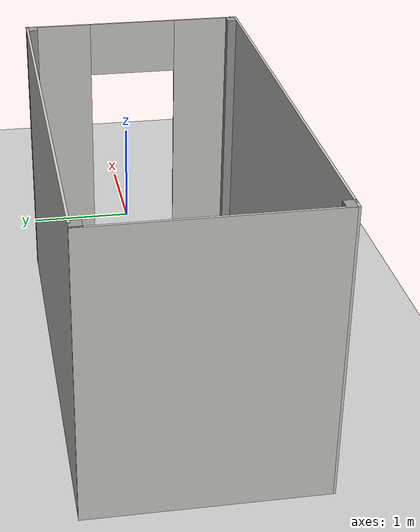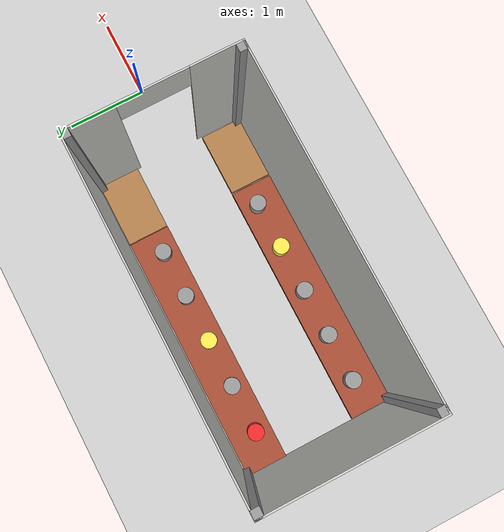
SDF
<sdf version="1.7">
 <world name="default">
  <light name="sun" type="directional">
   <pose>0 0 10 0 -0 0</pose>
   <diffuse>0.8 0.8 0.8 1</diffuse>
   <specular>0.2 0.2 0.2 1</specular>
   <attenuation>
    <range>1000</range>
    <constant>0.9</constant>
    <linear>0.01</linear>
    <quadratic>0.001</quadratic>
   </attenuation>
   <direction>-0.5 0.1 -0.9</direction>
   <spot><inner_angle>0</inner_angle><outer_angle>0</outer_angle><falloff>0</falloff></spot>
  </light>
  <model name="ground_plane">
   <static>1</static>
   <link name="link">
    <collision name="collision">
     <geometry><plane><normal>0 0 1</normal><size>100 100</size></plane></geometry>
     <surface><friction><ode><mu>100</mu><mu2>50</mu2></ode></friction></surface>
    </collision>
    <visual name="visual">
     <cast_shadows>0</cast_shadows>
     <geometry><plane><normal>0 0 1</normal><size>100 100</size></plane></geometry>
     <material>
      <script><uri>file://media/materials/scripts/gazebo.material</uri><name>Gazebo/Grey</name></script>
     </material>
    </visual>
   </link>
  </model>
  <gravity>0 0 -9.8</gravity>
  <magnetic_field>6e-06 2.3e-05 -4.2e-05</magnetic_field>
  <atmosphere type="adiabatic"/>
  <physics type="ode">
   <max_step_size>0.001</max_step_size>
   <real_time_factor>1</real_time_factor>
   <real_time_update_rate>1000</real_time_update_rate>
  </physics>
  <scene><ambient>0.4 0.4 0.4 1</ambient><background>0.7 0.7 0.7 1</background><shadows>1</shadows></scene>
  <spherical_coordinates>
   <surface_model>EARTH_WGS84</surface_model>
   <latitude_deg>0</latitude_deg>
   <longitude_deg>0</longitude_deg>
   <elevation>0</elevation>
   <heading_deg>0</heading_deg>
  </spherical_coordinates>
  <model name="Greenhouse">
   <link name="Wall_0">
    <pose>-0.048 -0.148439 0 0 -0 0</pose>
    <visual name="Wall_0_Visual">
     <pose>0 0 1.25 0 -0 0</pose>
     <geometry><box><size>4 0.02 2.5</size></box></geometry>
     <material>
      <script><uri>file://media/materials/scripts/gazebo.material</uri><name>Gazebo/CeilingTiled</name></script>
      <ambient>1 1 1 1</ambient>
      <shader type="pixel"/>
     </material>
     <meta><layer>0</layer></meta>
    </visual>
    <collision name="Wall_0_Collision">
     <pose>0 0 1.25 0 -0 0</pose>
     <geometry><box><size>4 0.02 2.5</size></box></geometry>
     <surface>
      <friction>
       <ode><mu>1</mu><mu2>1</mu2><fdir1>0 0 0</fdir1><slip1>0</slip1><slip2>0</slip2></ode>
       <torsional>
        <coefficient>1</coefficient>
        <patch_radius>0</patch_radius>
        <surface_radius>0</surface_radius>
        <use_patch_radius>1</use_patch_radius>
        <ode><slip>0</slip></ode>
       </torsional>
      </friction>
      <bounce><restitution_coefficient>0</restitution_coefficient><threshold>1e+06</threshold></bounce>
      <contact>
       <collide_without_contact>0</collide_without_contact>
       <collide_without_contact_bitmask>1</collide_without_contact_bitmask>
       <collide_bitmask>1</collide_bitmask>
       <ode>
        <soft_cfm>0</soft_cfm>
        <soft_erp>0.2</soft_erp>
        <kp>1e+13</kp>
        <kd>1</kd>
        <max_vel>0.01</max_vel>
        <min_depth>0</min_depth>
       </ode>
       <bullet>
        <split_impulse>1</split_impulse>
        <split_impulse_penetration_threshold>-0.01</split_impulse_penetration_threshold>
        <soft_cfm>0</soft_cfm>
        <soft_erp>0.2</soft_erp>
        <kp>1e+13</kp>
        <kd>1</kd>
       </bullet>
      </contact>
     </surface>
    </collision>
   </link>
   <link name="Wall_1">
    <pose>1.942 -1.13844 0 0 0 -1.5708</pose>
    <visual name="Wall_1_Visual_1">
     <pose>0.699876 0 1.25 0 -0 0</pose>
     <geometry><box><size>0.600248 0.02 2.5</size></box></geometry>
     <material>
      <script><uri>file://media/materials/scripts/gazebo.material</uri><name>Gazebo/CeilingTiled</name></script>
      <ambient>1 1 1 1</ambient>
      <shader type="pixel"/>
     </material>
     <meta><layer>0</layer></meta>
    </visual>
    <visual name="Wall_1_Visual_2">
     <pose>-0.000248 0 2.25 0 -0 0</pose>
     <geometry><box><size>0.8 0.02 0.5</size></box></geometry>
     <material>
      <script><uri>file://media/materials/scripts/gazebo.material</uri><name>Gazebo/CeilingTiled</name></script>
      <ambient>1 1 1 1</ambient>
      <shader type="pixel"/>
     </material>
     <meta><layer>0</layer></meta>
    </visual>
    <visual name="Wall_1_Visual_0">
     <pose>-0.700124 0 1.25 0 -0 0</pose>
     <geometry><box><size>0.599752 0.02 2.5</size></box></geometry>
     <material>
      <script><uri>file://media/materials/scripts/gazebo.material</uri><name>Gazebo/CeilingTiled</name></script>
      <ambient>1 1 1 1</ambient>
      <shader type="pixel"/>
     </material>
     <meta><layer>0</layer></meta>
    </visual>
    <collision name="Wall_1_Collision_0">
     <pose>-0.700124 0 1.25 0 -0 0</pose>
     <geometry><box><size>0.599752 0.02 2.5</size></box></geometry>
     <surface>
      <friction>
       <ode><mu>1</mu><mu2>1</mu2><fdir1>0 0 0</fdir1><slip1>0</slip1><slip2>0</slip2></ode>
       <torsional>
        <coefficient>1</coefficient>
        <patch_radius>0</patch_radius>
        <surface_radius>0</surface_radius>
        <use_patch_radius>1</use_patch_radius>
        <ode><slip>0</slip></ode>
       </torsional>
      </friction>
      <bounce><restitution_coefficient>0</restitution_coefficient><threshold>1e+06</threshold></bounce>
      <contact>
       <collide_without_contact>0</collide_without_contact>
       <collide_without_contact_bitmask>1</collide_without_contact_bitmask>
       <collide_bitmask>1</collide_bitmask>
       <ode>
        <soft_cfm>0</soft_cfm>
        <soft_erp>0.2</soft_erp>
        <kp>1e+13</kp>
        <kd>1</kd>
        <max_vel>0.01</max_vel>
        <min_depth>0</min_depth>
       </ode>
       <bullet>
        <split_impulse>1</split_impulse>
        <split_impulse_penetration_threshold>-0.01</split_impulse_penetration_threshold>
        <soft_cfm>0</soft_cfm>
        <soft_erp>0.2</soft_erp>
        <kp>1e+13</kp>
        <kd>1</kd>
       </bullet>
      </contact>
     </surface>
    </collision>
    <collision name="Wall_1_Collision_1">
     <pose>0.699876 0 1.25 0 -0 0</pose>
     <geometry><box><size>0.600248 0.02 2.5</size></box></geometry>
     <surface>
      <friction>
       <ode><mu>1</mu><mu2>1</mu2><fdir1>0 0 0</fdir1><slip1>0</slip1><slip2>0</slip2></ode>
       <torsional>
        <coefficient>1</coefficient>
        <patch_radius>0</patch_radius>
        <surface_radius>0</surface_radius>
        <use_patch_radius>1</use_patch_radius>
        <ode><slip>0</slip></ode>
       </torsional>
      </friction>
      <bounce><restitution_coefficient>0</restitution_coefficient><threshold>1e+06</threshold></bounce>
      <contact>
       <collide_without_contact>0</collide_without_contact>
       <collide_without_contact_bitmask>1</collide_without_contact_bitmask>
       <collide_bitmask>1</collide_bitmask>
       <ode>
        <soft_cfm>0</soft_cfm>
        <soft_erp>0.2</soft_erp>
        <kp>1e+13</kp>
        <kd>1</kd>
        <max_vel>0.01</max_vel>
        <min_depth>0</min_depth>
       </ode>
       <bullet>
        <split_impulse>1</split_impulse>
        <split_impulse_penetration_threshold>-0.01</split_impulse_penetration_threshold>
        <soft_cfm>0</soft_cfm>
        <soft_erp>0.2</soft_erp>
        <kp>1e+13</kp>
        <kd>1</kd>
       </bullet>
      </contact>
     </surface>
    </collision>
    <collision name="Wall_1_Collision_2">
     <pose>-0.000248 0 2.25 0 -0 0</pose>
     <geometry><box><size>0.8 0.02 0.5</size></box></geometry>
     <surface>
      <friction>
       <ode><mu>1</mu><mu2>1</mu2><fdir1>0 0 0</fdir1><slip1>0</slip1><slip2>0</slip2></ode>
       <torsional>
        <coefficient>1</coefficient>
        <patch_radius>0</patch_radius>
        <surface_radius>0</surface_radius>
        <use_patch_radius>1</use_patch_radius>
        <ode><slip>0</slip></ode>
       </torsional>
      </friction>
      <bounce><restitution_coefficient>0</restitution_coefficient><threshold>1e+06</threshold></bounce>
      <contact>
       <collide_without_contact>0</collide_without_contact>
       <collide_without_contact_bitmask>1</collide_without_contact_bitmask>
       <collide_bitmask>1</collide_bitmask>
       <ode>
        <soft_cfm>0</soft_cfm>
        <soft_erp>0.2</soft_erp>
        <kp>1e+13</kp>
        <kd>1</kd>
        <max_vel>0.01</max_vel>
        <min_depth>0</min_depth>
       </ode>
       <bullet>
        <split_impulse>1</split_impulse>
        <split_impulse_penetration_threshold>-0.01</split_impulse_penetration_threshold>
        <soft_cfm>0</soft_cfm>
        <soft_erp>0.2</soft_erp>
        <kp>1e+13</kp>
        <kd>1</kd>
       </bullet>
      </contact>
     </surface>
    </collision>
   </link>
   <link name="Wall_18">
    <pose>-0.468315 -1.85777 0 0 -0 3.14159</pose>
    <inertial>
     <mass>0.836289</mass>
     <inertia>
      <ixx>0.0201198</ixx>
      <ixy>0</ixy>
      <ixz>0</ixz>
      <iyy>0.665601</iyy>
      <iyz>0</iyz>
      <izz>0.684327</izz>
     </inertia>
    </inertial>
    <visual name="Wall_18_Visual">
     <pose>0 0 0.025 0 -0 0</pose>
     <geometry><box><size>3.08881 0.527921 0.1</size></box></geometry>
     <material>
      <script><uri>file://media/materials/scripts/gazebo.material</uri><name>Gazebo/Bricks</name></script>
      <ambient>0.996 0.475 0.02 1</ambient>
      <shader type="pixel"><normal_map>__default__</normal_map></shader>
      <diffuse>1 1 1 1</diffuse>
      <specular>0.2 0.2 0.2 1</specular>
      <emissive>0 0 0 1</emissive>
     </material>
     <meta><layer>0</layer></meta>
    </visual>
    <collision name="Wall_18_Collision">
     <pose>0 0 0.025 0 -0 0</pose>
     <geometry><box><size>3.08881 0.527921 0.1</size></box></geometry>
     <surface>
      <friction>
       <ode><mu>1</mu><mu2>1</mu2><fdir1>0 0 0</fdir1><slip1>0</slip1><slip2>0</slip2></ode>
       <torsional>
        <coefficient>1</coefficient>
        <patch_radius>0</patch_radius>
        <surface_radius>0</surface_radius>
        <use_patch_radius>1</use_patch_radius>
        <ode><slip>0</slip></ode>
       </torsional>
      </friction>
      <bounce><restitution_coefficient>0</restitution_coefficient><threshold>1e+06</threshold></bounce>
      <contact>
       <collide_without_contact>0</collide_without_contact>
       <collide_without_contact_bitmask>1</collide_without_contact_bitmask>
       <collide_bitmask>1</collide_bitmask>
       <ode>
        <soft_cfm>0</soft_cfm>
        <soft_erp>0.2</soft_erp>
        <kp>1e+13</kp>
        <kd>1</kd>
        <max_vel>0.01</max_vel>
        <min_depth>0</min_depth>
       </ode>
       <bullet>
        <split_impulse>1</split_impulse>
        <split_impulse_penetration_threshold>-0.01</split_impulse_penetration_threshold>
        <soft_cfm>0</soft_cfm>
        <soft_erp>0.2</soft_erp>
        <kp>1e+13</kp>
        <kd>1</kd>
       </bullet>
      </contact>
     </surface>
    </collision>
   </link>
   <link name="Wall_2">
    <pose>-0.048 -2.12844 0 0 -0 3.14159</pose>
    <visual name="Wall_2_Visual">
     <pose>0 0 1.25 0 -0 0</pose>
     <geometry><box><size>4 0.02 2.5</size></box></geometry>
     <material>
      <script><uri>file://media/materials/scripts/gazebo.material</uri><name>Gazebo/CeilingTiled</name></script>
      <ambient>1 1 1 1</ambient>
      <shader type="pixel"/>
     </material>
     <meta><layer>0</layer></meta>
    </visual>
    <collision name="Wall_2_Collision">
     <pose>0 0 1.25 0 -0 0</pose>
     <geometry><box><size>4 0.02 2.5</size></box></geometry>
     <surface>
      <friction>
       <ode><mu>1</mu><mu2>1</mu2><fdir1>0 0 0</fdir1><slip1>0</slip1><slip2>0</slip2></ode>
       <torsional>
        <coefficient>1</coefficient>
        <patch_radius>0</patch_radius>
        <surface_radius>0</surface_radius>
        <use_patch_radius>1</use_patch_radius>
        <ode><slip>0</slip></ode>
       </torsional>
      </friction>
      <bounce><restitution_coefficient>0</restitution_coefficient><threshold>1e+06</threshold></bounce>
      <contact>
       <collide_without_contact>0</collide_without_contact>
       <collide_without_contact_bitmask>1</collide_without_contact_bitmask>
       <collide_bitmask>1</collide_bitmask>
       <ode>
        <soft_cfm>0</soft_cfm>
        <soft_erp>0.2</soft_erp>
        <kp>1e+13</kp>
        <kd>1</kd>
        <max_vel>0.01</max_vel>
        <min_depth>0</min_depth>
       </ode>
       <bullet>
        <split_impulse>1</split_impulse>
        <split_impulse_penetration_threshold>-0.01</split_impulse_penetration_threshold>
        <soft_cfm>0</soft_cfm>
        <soft_erp>0.2</soft_erp>
        <kp>1e+13</kp>
        <kd>1</kd>
       </bullet>
      </contact>
     </surface>
    </collision>
   </link>
   <link name="Wall_20">
    <pose>-0.474215 -0.432825 0 0 -0 3.14159</pose>
    <inertial>
     <mass>0.824884</mass>
     <inertia>
      <ixx>0.0189166</ixx>
      <ixy>0</ixy>
      <ixz>0</ixz>
      <iyy>0.671272</iyy>
      <iyz>0</iyz>
      <izz>0.688814</izz>
     </inertia>
    </inertial>
    <visual name="Wall_20_Visual">
     <pose>0 0 0.025 0 -0 0</pose>
     <geometry><box><size>3.12335 0.514965 0.1</size></box></geometry>
     <material>
      <script><uri>file://media/materials/scripts/gazebo.material</uri><name>Gazebo/Bricks</name></script>
      <ambient>1 1 1 1</ambient>
      <shader type="pixel"><normal_map>__default__</normal_map></shader>
      <diffuse>1 1 1 1</diffuse>
      <specular>0.2 0.2 0.2 1</specular>
      <emissive>0 0 0 1</emissive>
     </material>
     <meta><layer>0</layer></meta>
    </visual>
    <collision name="Wall_20_Collision">
     <pose>0 0 0.025 0 -0 0</pose>
     <geometry><box><size>3.12335 0.514965 0.1</size></box></geometry>
     <surface>
      <friction>
       <ode><mu>1</mu><mu2>1</mu2><fdir1>0 0 0</fdir1><slip1>0</slip1><slip2>0</slip2></ode>
       <torsional>
        <coefficient>1</coefficient>
        <patch_radius>0</patch_radius>
        <surface_radius>0</surface_radius>
        <use_patch_radius>1</use_patch_radius>
        <ode><slip>0</slip></ode>
       </torsional>
      </friction>
      <bounce><restitution_coefficient>0</restitution_coefficient><threshold>1e+06</threshold></bounce>
      <contact>
       <collide_without_contact>0</collide_without_contact>
       <collide_without_contact_bitmask>1</collide_without_contact_bitmask>
       <collide_bitmask>1</collide_bitmask>
       <ode>
        <soft_cfm>0</soft_cfm>
        <soft_erp>0.2</soft_erp>
        <kp>1e+13</kp>
        <kd>1</kd>
        <max_vel>0.01</max_vel>
        <min_depth>0</min_depth>
       </ode>
       <bullet>
        <split_impulse>1</split_impulse>
        <split_impulse_penetration_threshold>-0.01</split_impulse_penetration_threshold>
        <soft_cfm>0</soft_cfm>
        <soft_erp>0.2</soft_erp>
        <kp>1e+13</kp>
        <kd>1</kd>
       </bullet>
      </contact>
     </surface>
    </collision>
   </link>
   <link name="Wall_22">
    <pose>1.508 -0.428972 0 0 -0 3.14159</pose>
    <inertial>
     <mass>0.98097</mass>
     <inertia>
      <ixx>0.0227787</ixx>
      <ixy>0</ixy>
      <ixz>0</ixz>
      <iyy>0.0554978</iyy>
      <iyz>0</iyz>
      <izz>0.0766416</izz>
     </inertia>
    </inertial>
    <visual name="Wall_22_Visual">
     <pose>0 0 0.025 0 -0 0</pose>
     <geometry><box><size>0.817859 0.518312 0.1</size></box></geometry>
     <material>
      <script><uri>file://media/materials/scripts/gazebo.material</uri><name>Gazebo/Wood</name></script>
      <ambient>1 1 1 1</ambient>
      <shader type="pixel"><normal_map>__default__</normal_map></shader>
      <diffuse>1 1 1 1</diffuse>
      <specular>0.2 0.2 0.2 1</specular>
      <emissive>0 0 0 1</emissive>
     </material>
     <meta><layer>0</layer></meta>
    </visual>
    <collision name="Wall_22_Collision">
     <pose>0 0 0.025 0 -0 0</pose>
     <geometry><box><size>0.817859 0.518312 0.1</size></box></geometry>
     <surface>
      <friction>
       <ode><mu>1</mu><mu2>1</mu2><fdir1>0 0 0</fdir1><slip1>0</slip1><slip2>0</slip2></ode>
       <torsional>
        <coefficient>1</coefficient>
        <patch_radius>0</patch_radius>
        <surface_radius>0</surface_radius>
        <use_patch_radius>1</use_patch_radius>
        <ode><slip>0</slip></ode>
       </torsional>
      </friction>
      <bounce><restitution_coefficient>0</restitution_coefficient><threshold>1e+06</threshold></bounce>
      <contact>
       <collide_without_contact>0</collide_without_contact>
       <collide_without_contact_bitmask>1</collide_without_contact_bitmask>
       <collide_bitmask>1</collide_bitmask>
       <ode>
        <soft_cfm>0</soft_cfm>
        <soft_erp>0.2</soft_erp>
        <kp>1e+13</kp>
        <kd>1</kd>
        <max_vel>0.01</max_vel>
        <min_depth>0</min_depth>
       </ode>
       <bullet>
        <split_impulse>1</split_impulse>
        <split_impulse_penetration_threshold>-0.01</split_impulse_penetration_threshold>
        <soft_cfm>0</soft_cfm>
        <soft_erp>0.2</soft_erp>
        <kp>1e+13</kp>
        <kd>1</kd>
       </bullet>
      </contact>
     </surface>
    </collision>
   </link>
   <link name="Wall_3">
    <pose>-2.038 -1.13844 0 0 -0 1.5708</pose>
    <visual name="Wall_3_Visual">
     <pose>0 0 1.25 0 -0 0</pose>
     <geometry><box><size>2.00024 0.02 2.5</size></box></geometry>
     <material>
      <script><uri>file://media/materials/scripts/gazebo.material</uri><name>Gazebo/CeilingTiled</name></script>
      <ambient>1 1 1 1</ambient>
      <shader type="pixel"/>
     </material>
     <meta><layer>0</layer></meta>
    </visual>
    <collision name="Wall_3_Collision">
     <pose>0 0 1.25 0 -0 0</pose>
     <geometry><box><size>2.00024 0.02 2.5</size></box></geometry>
     <surface>
      <friction>
       <ode><mu>1</mu><mu2>1</mu2><fdir1>0 0 0</fdir1><slip1>0</slip1><slip2>0</slip2></ode>
       <torsional>
        <coefficient>1</coefficient>
        <patch_radius>0</patch_radius>
        <surface_radius>0</surface_radius>
        <use_patch_radius>1</use_patch_radius>
        <ode><slip>0</slip></ode>
       </torsional>
      </friction>
      <bounce><restitution_coefficient>0</restitution_coefficient><threshold>1e+06</threshold></bounce>
      <contact>
       <collide_without_contact>0</collide_without_contact>
       <collide_without_contact_bitmask>1</collide_without_contact_bitmask>
       <collide_bitmask>1</collide_bitmask>
       <ode>
        <soft_cfm>0</soft_cfm>
        <soft_erp>0.2</soft_erp>
        <kp>1e+13</kp>
        <kd>1</kd>
        <max_vel>0.01</max_vel>
        <min_depth>0</min_depth>
       </ode>
       <bullet>
        <split_impulse>1</split_impulse>
        <split_impulse_penetration_threshold>-0.01</split_impulse_penetration_threshold>
        <soft_cfm>0</soft_cfm>
        <soft_erp>0.2</soft_erp>
        <kp>1e+13</kp>
        <kd>1</kd>
       </bullet>
      </contact>
     </surface>
    </collision>
   </link>
   <link name="Wall_30">
    <pose>-1.99166 -2.0858 0 0 -0 0</pose>
    <visual name="Wall_30_Visual">
     <pose>0 0 1.25 0 -0 0</pose>
     <geometry><box><size>0.11 0.1 2.5</size></box></geometry>
     <material>
      <script><uri>file://media/materials/scripts/gazebo.material</uri><name>Gazebo/Grey</name></script>
      <ambient>0.333333 0.341176 0.32549 1</ambient>
      <shader type="pixel"/>
     </material>
     <meta><layer>0</layer></meta>
    </visual>
    <collision name="Wall_30_Collision">
     <pose>0 0 1.25 0 -0 0</pose>
     <geometry><box><size>0.11 0.1 2.5</size></box></geometry>
     <surface>
      <friction>
       <ode><mu>1</mu><mu2>1</mu2><fdir1>0 0 0</fdir1><slip1>0</slip1><slip2>0</slip2></ode>
       <torsional>
        <coefficient>1</coefficient>
        <patch_radius>0</patch_radius>
        <surface_radius>0</surface_radius>
        <use_patch_radius>1</use_patch_radius>
        <ode><slip>0</slip></ode>
       </torsional>
      </friction>
      <bounce><restitution_coefficient>0</restitution_coefficient><threshold>1e+06</threshold></bounce>
      <contact>
       <collide_without_contact>0</collide_without_contact>
       <collide_without_contact_bitmask>1</collide_without_contact_bitmask>
       <collide_bitmask>1</collide_bitmask>
       <ode>
        <soft_cfm>0</soft_cfm>
        <soft_erp>0.2</soft_erp>
        <kp>1e+13</kp>
        <kd>1</kd>
        <max_vel>0.01</max_vel>
        <min_depth>0</min_depth>
       </ode>
       <bullet>
        <split_impulse>1</split_impulse>
        <split_impulse_penetration_threshold>-0.01</split_impulse_penetration_threshold>
        <soft_cfm>0</soft_cfm>
        <soft_erp>0.2</soft_erp>
        <kp>1e+13</kp>
        <kd>1</kd>
       </bullet>
      </contact>
     </surface>
    </collision>
   </link>
   <link name="Wall_32">
    <pose>1.89691 -2.08694 0 0 -0 0</pose>
    <visual name="Wall_32_Visual">
     <pose>0 0 1.25 0 -0 0</pose>
     <geometry><box><size>0.11 0.1 2.5</size></box></geometry>
     <material>
      <script><uri>file://media/materials/scripts/gazebo.material</uri><name>Gazebo/Grey</name></script>
      <ambient>0.333333 0.341176 0.32549 1</ambient>
      <shader type="pixel"/>
     </material>
     <meta><layer>0</layer></meta>
    </visual>
    <collision name="Wall_32_Collision">
     <pose>0 0 1.25 0 -0 0</pose>
     <geometry><box><size>0.11 0.1 2.5</size></box></geometry>
     <surface>
      <friction>
       <ode><mu>1</mu><mu2>1</mu2><fdir1>0 0 0</fdir1><slip1>0</slip1><slip2>0</slip2></ode>
       <torsional>
        <coefficient>1</coefficient>
        <patch_radius>0</patch_radius>
        <surface_radius>0</surface_radius>
        <use_patch_radius>1</use_patch_radius>
        <ode><slip>0</slip></ode>
       </torsional>
      </friction>
      <bounce><restitution_coefficient>0</restitution_coefficient><threshold>1e+06</threshold></bounce>
      <contact>
       <collide_without_contact>0</collide_without_contact>
       <collide_without_contact_bitmask>1</collide_without_contact_bitmask>
       <collide_bitmask>1</collide_bitmask>
       <ode>
        <soft_cfm>0</soft_cfm>
        <soft_erp>0.2</soft_erp>
        <kp>1e+13</kp>
        <kd>1</kd>
        <max_vel>0.01</max_vel>
        <min_depth>0</min_depth>
       </ode>
       <bullet>
        <split_impulse>1</split_impulse>
        <split_impulse_penetration_threshold>-0.01</split_impulse_penetration_threshold>
        <soft_cfm>0</soft_cfm>
        <soft_erp>0.2</soft_erp>
        <kp>1e+13</kp>
        <kd>1</kd>
       </bullet>
      </contact>
     </surface>
    </collision>
   </link>
   <link name="Wall_34">
    <pose>1.50033 -1.85782 0 0 -0 3.14159</pose>
    <inertial>
     <mass>0.976063</mass>
     <inertia>
      <ixx>0.0230572</ixx>
      <ixy>0</ixy>
      <ixz>0</ixz>
      <iyy>0.0536994</iyy>
      <iyz>0</iyz>
      <izz>0.0751298</izz>
     </inertia>
    </inertial>
    <visual name="Wall_34_Visual">
     <pose>0 0 0.025 0 -0 0</pose>
     <geometry><box><size>0.806347 0.522945 0.1</size></box></geometry>
     <material>
      <script><uri>file://media/materials/scripts/gazebo.material</uri><name>Gazebo/Wood</name></script>
      <ambient>1 1 1 1</ambient>
      <shader type="pixel"><normal_map>__default__</normal_map></shader>
      <diffuse>1 1 1 1</diffuse>
      <specular>0.2 0.2 0.2 1</specular>
      <emissive>0 0 0 1</emissive>
     </material>
     <meta><layer>0</layer></meta>
    </visual>
    <collision name="Wall_34_Collision">
     <pose>0 0 0.025 0 -0 0</pose>
     <geometry><box><size>0.806347 0.522945 0.1</size></box></geometry>
     <surface>
      <friction>
       <ode><mu>1</mu><mu2>1</mu2><fdir1>0 0 0</fdir1><slip1>0</slip1><slip2>0</slip2></ode>
       <torsional>
        <coefficient>1</coefficient>
        <patch_radius>0</patch_radius>
        <surface_radius>0</surface_radius>
        <use_patch_radius>1</use_patch_radius>
        <ode><slip>0</slip></ode>
       </torsional>
      </friction>
      <bounce><restitution_coefficient>0</restitution_coefficient><threshold>1e+06</threshold></bounce>
      <contact>
       <collide_without_contact>0</collide_without_contact>
       <collide_without_contact_bitmask>1</collide_without_contact_bitmask>
       <collide_bitmask>1</collide_bitmask>
       <ode>
        <soft_cfm>0</soft_cfm>
        <soft_erp>0.2</soft_erp>
        <kp>1e+13</kp>
        <kd>1</kd>
        <max_vel>0.01</max_vel>
        <min_depth>0</min_depth>
       </ode>
       <bullet>
        <split_impulse>1</split_impulse>
        <split_impulse_penetration_threshold>-0.01</split_impulse_penetration_threshold>
        <soft_cfm>0</soft_cfm>
        <soft_erp>0.2</soft_erp>
        <kp>1e+13</kp>
        <kd>1</kd>
       </bullet>
      </contact>
     </surface>
    </collision>
   </link>
   <link name="Wall_36">
    <pose>-1.99157 -0.189584 0 0 -0 0</pose>
    <visual name="Wall_36_Visual">
     <pose>0 0 1.25 0 -0 0</pose>
     <geometry><box><size>0.11 0.1 2.5</size></box></geometry>
     <material>
      <script><uri>file://media/materials/scripts/gazebo.material</uri><name>Gazebo/Grey</name></script>
      <ambient>0.333333 0.341176 0.32549 1</ambient>
      <shader type="pixel"/>
     </material>
     <meta><layer>0</layer></meta>
    </visual>
    <collision name="Wall_36_Collision">
     <pose>0 0 1.25 0 -0 0</pose>
     <geometry><box><size>0.11 0.1 2.5</size></box></geometry>
     <surface>
      <friction>
       <ode><mu>1</mu><mu2>1</mu2><fdir1>0 0 0</fdir1><slip1>0</slip1><slip2>0</slip2></ode>
       <torsional>
        <coefficient>1</coefficient>
        <patch_radius>0</patch_radius>
        <surface_radius>0</surface_radius>
        <use_patch_radius>1</use_patch_radius>
        <ode><slip>0</slip></ode>
       </torsional>
      </friction>
      <bounce><restitution_coefficient>0</restitution_coefficient><threshold>1e+06</threshold></bounce>
      <contact>
       <collide_without_contact>0</collide_without_contact>
       <collide_without_contact_bitmask>1</collide_without_contact_bitmask>
       <collide_bitmask>1</collide_bitmask>
       <ode>
        <soft_cfm>0</soft_cfm>
        <soft_erp>0.2</soft_erp>
        <kp>1e+13</kp>
        <kd>1</kd>
        <max_vel>0.01</max_vel>
        <min_depth>0</min_depth>
       </ode>
       <bullet>
        <split_impulse>1</split_impulse>
        <split_impulse_penetration_threshold>-0.01</split_impulse_penetration_threshold>
        <soft_cfm>0</soft_cfm>
        <soft_erp>0.2</soft_erp>
        <kp>1e+13</kp>
        <kd>1</kd>
       </bullet>
      </contact>
     </surface>
    </collision>
   </link>
   <link name="Wall_40">
    <pose>1.89912 -0.187869 0 0 -0 0</pose>
    <visual name="Wall_40_Visual">
     <pose>0 0 1.25 0 -0 0</pose>
     <geometry><box><size>0.11 0.1 2.5</size></box></geometry>
     <material>
      <script><uri>file://media/materials/scripts/gazebo.material</uri><name>Gazebo/Grey</name></script>
      <ambient>0.333333 0.341176 0.32549 1</ambient>
      <shader type="pixel"/>
     </material>
     <meta><layer>0</layer></meta>
    </visual>
    <collision name="Wall_40_Collision">
     <pose>0 0 1.25 0 -0 0</pose>
     <geometry><box><size>0.11 0.1 2.5</size></box></geometry>
     <surface>
      <friction>
       <ode><mu>1</mu><mu2>1</mu2><fdir1>0 0 0</fdir1><slip1>0</slip1><slip2>0</slip2></ode>
       <torsional>
        <coefficient>1</coefficient>
        <patch_radius>0</patch_radius>
        <surface_radius>0</surface_radius>
        <use_patch_radius>1</use_patch_radius>
        <ode><slip>0</slip></ode>
       </torsional>
      </friction>
      <bounce><restitution_coefficient>0</restitution_coefficient><threshold>1e+06</threshold></bounce>
      <contact>
       <collide_without_contact>0</collide_without_contact>
       <collide_without_contact_bitmask>1</collide_without_contact_bitmask>
       <collide_bitmask>1</collide_bitmask>
       <ode>
        <soft_cfm>0</soft_cfm>
        <soft_erp>0.2</soft_erp>
        <kp>1e+13</kp>
        <kd>1</kd>
        <max_vel>0.01</max_vel>
        <min_depth>0</min_depth>
       </ode>
       <bullet>
        <split_impulse>1</split_impulse>
        <split_impulse_penetration_threshold>-0.01</split_impulse_penetration_threshold>
        <soft_cfm>0</soft_cfm>
        <soft_erp>0.2</soft_erp>
        <kp>1e+13</kp>
        <kd>1</kd>
       </bullet>
      </contact>
     </surface>
    </collision>
   </link>
   <link name="link_0">
    <inertial>
     <mass>1</mass>
     <inertia><ixx>0.145833</ixx><ixy>0</ixy><ixz>0</ixz><iyy>0.145833</iyy><iyz>0</iyz><izz>0.125</izz></inertia>
    </inertial>
    <pose>0.8 -0.5 0.2 0 -0 0</pose>
    <visual name="visual">
     <geometry><cylinder><radius>0.1</radius><length>0.2</length></cylinder></geometry>
     <material>
      <lighting>1</lighting>
      <script><uri>file://media/materials/scripts/gazebo.material</uri><name>Gazebo/Grey</name></script>
      <shader type="pixel"><normal_map>__default__</normal_map></shader>
      <ambient>1 1 1 1</ambient>
      <diffuse>1 1 1 1</diffuse>
      <specular>0.01 0.01 0.01 1</specular>
      <emissive>0 0 0 1</emissive>
     </material>
    </visual>
    <collision name="collision">
     <geometry><cylinder><radius>0.1</radius><length>0.2</length></cylinder></geometry>
     <surface>
      <friction>
       <ode><mu>1</mu><mu2>1</mu2><fdir1>0 0 0</fdir1><slip1>0</slip1><slip2>0</slip2></ode>
       <torsional>
        <coefficient>1</coefficient>
        <patch_radius>0</patch_radius>
        <surface_radius>0</surface_radius>
        <use_patch_radius>1</use_patch_radius>
        <ode><slip>0</slip></ode>
       </torsional>
      </friction>
      <bounce><restitution_coefficient>0</restitution_coefficient><threshold>1e+06</threshold></bounce>
      <contact>
       <collide_without_contact>0</collide_without_contact>
       <collide_without_contact_bitmask>1</collide_without_contact_bitmask>
       <collide_bitmask>1</collide_bitmask>
       <ode>
        <soft_cfm>0</soft_cfm>
        <soft_erp>0.2</soft_erp>
        <kp>1e+13</kp>
        <kd>1</kd>
        <max_vel>0.01</max_vel>
        <min_depth>0</min_depth>
       </ode>
       <bullet>
        <split_impulse>1</split_impulse>
        <split_impulse_penetration_threshold>-0.01</split_impulse_penetration_threshold>
        <soft_cfm>0</soft_cfm>
        <soft_erp>0.2</soft_erp>
        <kp>1e+13</kp>
        <kd>1</kd>
       </bullet>
      </contact>
     </surface>
    </collision>
   </link>
   <link name="link_0_clone">
    <inertial>
     <mass>1</mass>
     <inertia><ixx>0.145833</ixx><ixy>0</ixy><ixz>0</ixz><iyy>0.145833</iyy><iyz>0</iyz><izz>0.125</izz></inertia>
    </inertial>
    <pose>0.2 -0.5 0.2 0 -0 0</pose>
    <visual name="visual">
     <geometry><cylinder><radius>0.1</radius><length>0.2</length></cylinder></geometry>
     <material>
      <lighting>1</lighting>
      <script><uri>file://media/materials/scripts/gazebo.material</uri><name>Gazebo/Grey</name></script>
      <shader type="pixel"><normal_map>__default__</normal_map></shader>
      <ambient>1 1 1 1</ambient>
      <diffuse>1 1 1 1</diffuse>
      <specular>0.01 0.01 0.01 1</specular>
      <emissive>0 0 0 1</emissive>
     </material>
    </visual>
    <collision name="collision">
     <geometry><cylinder><radius>0.1</radius><length>0.2</length></cylinder></geometry>
     <surface>
      <friction>
       <ode><mu>1</mu><mu2>1</mu2><fdir1>0 0 0</fdir1><slip1>0</slip1><slip2>0</slip2></ode>
       <torsional>
        <coefficient>1</coefficient>
        <patch_radius>0</patch_radius>
        <surface_radius>0</surface_radius>
        <use_patch_radius>1</use_patch_radius>
        <ode><slip>0</slip></ode>
       </torsional>
      </friction>
      <bounce><restitution_coefficient>0</restitution_coefficient><threshold>1e+06</threshold></bounce>
      <contact>
       <collide_without_contact>0</collide_without_contact>
       <collide_without_contact_bitmask>1</collide_without_contact_bitmask>
       <collide_bitmask>1</collide_bitmask>
       <ode>
        <soft_cfm>0</soft_cfm>
        <soft_erp>0.2</soft_erp>
        <kp>1e+13</kp>
        <kd>1</kd>
        <max_vel>0.01</max_vel>
        <min_depth>0</min_depth>
       </ode>
       <bullet>
        <split_impulse>1</split_impulse>
        <split_impulse_penetration_threshold>-0.01</split_impulse_penetration_threshold>
        <soft_cfm>0</soft_cfm>
        <soft_erp>0.2</soft_erp>
        <kp>1e+13</kp>
        <kd>1</kd>
       </bullet>
      </contact>
     </surface>
    </collision>
   </link>
   <link name="link_0_clone_0">
    <inertial>
     <mass>1</mass>
     <inertia><ixx>0.145833</ixx><ixy>0</ixy><ixz>0</ixz><iyy>0.145833</iyy><iyz>0</iyz><izz>0.125</izz></inertia>
    </inertial>
    <pose>-0.4 -0.5 0.2 0 -0 0</pose>
    <visual name="visual">
     <geometry><cylinder><radius>0.1</radius><length>0.2</length></cylinder></geometry>
     <material>
      <lighting>1</lighting>
      <script><uri>file://media/materials/scripts/gazebo.material</uri><name>Gazebo/Grey</name></script>
      <shader type="pixel"><normal_map>__default__</normal_map></shader>
      <ambient>0.988 0.914 0.31 1</ambient>
      <diffuse>1 1 1 1</diffuse>
      <specular>0.01 0.01 0.01 1</specular>
      <emissive>0 0 0 1</emissive>
     </material>
    </visual>
    <collision name="collision">
     <geometry><cylinder><radius>0.1</radius><length>0.2</length></cylinder></geometry>
     <surface>
      <friction>
       <ode><mu>1</mu><mu2>1</mu2><fdir1>0 0 0</fdir1><slip1>0</slip1><slip2>0</slip2></ode>
       <torsional>
        <coefficient>1</coefficient>
        <patch_radius>0</patch_radius>
        <surface_radius>0</surface_radius>
        <use_patch_radius>1</use_patch_radius>
        <ode><slip>0</slip></ode>
       </torsional>
      </friction>
      <bounce><restitution_coefficient>0</restitution_coefficient><threshold>1e+06</threshold></bounce>
      <contact>
       <collide_without_contact>0</collide_without_contact>
       <collide_without_contact_bitmask>1</collide_without_contact_bitmask>
       <collide_bitmask>1</collide_bitmask>
       <ode>
        <soft_cfm>0</soft_cfm>
        <soft_erp>0.2</soft_erp>
        <kp>1e+13</kp>
        <kd>1</kd>
        <max_vel>0.01</max_vel>
        <min_depth>0</min_depth>
       </ode>
       <bullet>
        <split_impulse>1</split_impulse>
        <split_impulse_penetration_threshold>-0.01</split_impulse_penetration_threshold>
        <soft_cfm>0</soft_cfm>
        <soft_erp>0.2</soft_erp>
        <kp>1e+13</kp>
        <kd>1</kd>
       </bullet>
      </contact>
     </surface>
    </collision>
   </link>
   <link name="link_0_clone_0_clone">
    <inertial>
     <mass>1</mass>
     <inertia><ixx>0.145833</ixx><ixy>0</ixy><ixz>0</ixz><iyy>0.145833</iyy><iyz>0</iyz><izz>0.125</izz></inertia>
    </inertial>
    <pose>-1 -0.5 0.2 0 -0 0</pose>
    <visual name="visual">
     <geometry><cylinder><radius>0.1</radius><length>0.2</length></cylinder></geometry>
     <material>
      <lighting>1</lighting>
      <script><uri>file://media/materials/scripts/gazebo.material</uri><name>Gazebo/Grey</name></script>
      <shader type="pixel"><normal_map>__default__</normal_map></shader>
      <ambient>1 1 1 1</ambient>
      <diffuse>1 1 1 1</diffuse>
      <specular>0.01 0.01 0.01 1</specular>
      <emissive>0 0 0 1</emissive>
     </material>
    </visual>
    <collision name="collision">
     <geometry><cylinder><radius>0.1</radius><length>0.2</length></cylinder></geometry>
     <surface>
      <friction>
       <ode><mu>1</mu><mu2>1</mu2><fdir1>0 0 0</fdir1><slip1>0</slip1><slip2>0</slip2></ode>
       <torsional>
        <coefficient>1</coefficient>
        <patch_radius>0</patch_radius>
        <surface_radius>0</surface_radius>
        <use_patch_radius>1</use_patch_radius>
        <ode><slip>0</slip></ode>
       </torsional>
      </friction>
      <bounce><restitution_coefficient>0</restitution_coefficient><threshold>1e+06</threshold></bounce>
      <contact>
       <collide_without_contact>0</collide_without_contact>
       <collide_without_contact_bitmask>1</collide_without_contact_bitmask>
       <collide_bitmask>1</collide_bitmask>
       <ode>
        <soft_cfm>0</soft_cfm>
        <soft_erp>0.2</soft_erp>
        <kp>1e+13</kp>
        <kd>1</kd>
        <max_vel>0.01</max_vel>
        <min_depth>0</min_depth>
       </ode>
       <bullet>
        <split_impulse>1</split_impulse>
        <split_impulse_penetration_threshold>-0.01</split_impulse_penetration_threshold>
        <soft_cfm>0</soft_cfm>
        <soft_erp>0.2</soft_erp>
        <kp>1e+13</kp>
        <kd>1</kd>
       </bullet>
      </contact>
     </surface>
    </collision>
   </link>
   <link name="link_0_clone_0_clone_0">
    <inertial>
     <mass>1</mass>
     <inertia><ixx>0.145833</ixx><ixy>0</ixy><ixz>0</ixz><iyy>0.145833</iyy><iyz>0</iyz><izz>0.125</izz></inertia>
    </inertial>
    <pose>-1.6 -0.5 0.2 0 -0 0</pose>
    <visual name="visual">
     <geometry><cylinder><radius>0.1</radius><length>0.2</length></cylinder></geometry>
     <material>
      <lighting>1</lighting>
      <script><uri>file://media/materials/scripts/gazebo.material</uri><name>Gazebo/Grey</name></script>
      <shader type="pixel"><normal_map>__default__</normal_map></shader>
      <ambient>0.937 0.161 0.161 1</ambient>
      <diffuse>1 1 1 1</diffuse>
      <specular>0.01 0.01 0.01 1</specular>
      <emissive>0 0 0 1</emissive>
     </material>
    </visual>
    <collision name="collision">
     <geometry><cylinder><radius>0.1</radius><length>0.2</length></cylinder></geometry>
     <surface>
      <friction>
       <ode><mu>1</mu><mu2>1</mu2><fdir1>0 0 0</fdir1><slip1>0</slip1><slip2>0</slip2></ode>
       <torsional>
        <coefficient>1</coefficient>
        <patch_radius>0</patch_radius>
        <surface_radius>0</surface_radius>
        <use_patch_radius>1</use_patch_radius>
        <ode><slip>0</slip></ode>
       </torsional>
      </friction>
      <bounce><restitution_coefficient>0</restitution_coefficient><threshold>1e+06</threshold></bounce>
      <contact>
       <collide_without_contact>0</collide_without_contact>
       <collide_without_contact_bitmask>1</collide_without_contact_bitmask>
       <collide_bitmask>1</collide_bitmask>
       <ode>
        <soft_cfm>0</soft_cfm>
        <soft_erp>0.2</soft_erp>
        <kp>1e+13</kp>
        <kd>1</kd>
        <max_vel>0.01</max_vel>
        <min_depth>0</min_depth>
       </ode>
       <bullet>
        <split_impulse>1</split_impulse>
        <split_impulse_penetration_threshold>-0.01</split_impulse_penetration_threshold>
        <soft_cfm>0</soft_cfm>
        <soft_erp>0.2</soft_erp>
        <kp>1e+13</kp>
        <kd>1</kd>
       </bullet>
      </contact>
     </surface>
    </collision>
   </link>
   <link name="link_0_clone_0_clone_0_clone">
    <inertial>
     <mass>1</mass>
     <inertia><ixx>0.145833</ixx><ixy>0</ixy><ixz>0</ixz><iyy>0.145833</iyy><iyz>0</iyz><izz>0.125</izz></inertia>
    </inertial>
    <pose>-1.6 -1.8 0.2 0 -0 0</pose>
    <visual name="visual">
     <geometry><cylinder><radius>0.1</radius><length>0.2</length></cylinder></geometry>
     <material>
      <lighting>1</lighting>
      <script><uri>file://media/materials/scripts/gazebo.material</uri><name>Gazebo/Grey</name></script>
      <shader type="pixel"><normal_map>__default__</normal_map></shader>
      <ambient>1 1 1 1</ambient>
      <diffuse>1 1 1 1</diffuse>
      <specular>0.01 0.01 0.01 1</specular>
      <emissive>0 0 0 1</emissive>
     </material>
    </visual>
    <collision name="collision">
     <geometry><cylinder><radius>0.1</radius><length>0.2</length></cylinder></geometry>
     <surface>
      <friction>
       <ode><mu>1</mu><mu2>1</mu2><fdir1>0 0 0</fdir1><slip1>0</slip1><slip2>0</slip2></ode>
       <torsional>
        <coefficient>1</coefficient>
        <patch_radius>0</patch_radius>
        <surface_radius>0</surface_radius>
        <use_patch_radius>1</use_patch_radius>
        <ode><slip>0</slip></ode>
       </torsional>
      </friction>
      <bounce><restitution_coefficient>0</restitution_coefficient><threshold>1e+06</threshold></bounce>
      <contact>
       <collide_without_contact>0</collide_without_contact>
       <collide_without_contact_bitmask>1</collide_without_contact_bitmask>
       <collide_bitmask>1</collide_bitmask>
       <ode>
        <soft_cfm>0</soft_cfm>
        <soft_erp>0.2</soft_erp>
        <kp>1e+13</kp>
        <kd>1</kd>
        <max_vel>0.01</max_vel>
        <min_depth>0</min_depth>
       </ode>
       <bullet>
        <split_impulse>1</split_impulse>
        <split_impulse_penetration_threshold>-0.01</split_impulse_penetration_threshold>
        <soft_cfm>0</soft_cfm>
        <soft_erp>0.2</soft_erp>
        <kp>1e+13</kp>
        <kd>1</kd>
       </bullet>
      </contact>
     </surface>
    </collision>
   </link>
   <link name="link_0_clone_0_clone_1">
    <inertial>
     <mass>1</mass>
     <inertia><ixx>0.145833</ixx><ixy>0</ixy><ixz>0</ixz><iyy>0.145833</iyy><iyz>0</iyz><izz>0.125</izz></inertia>
    </inertial>
    <pose>-0.4 -1.8 0.2 0 -0 0</pose>
    <visual name="visual">
     <geometry><cylinder><radius>0.1</radius><length>0.2</length></cylinder></geometry>
     <material>
      <lighting>1</lighting>
      <script><uri>file://media/materials/scripts/gazebo.material</uri><name>Gazebo/Grey</name></script>
      <shader type="pixel"><normal_map>__default__</normal_map></shader>
      <ambient>1 1 1 1</ambient>
      <diffuse>1 1 1 1</diffuse>
      <specular>0.01 0.01 0.01 1</specular>
      <emissive>0 0 0 1</emissive>
     </material>
    </visual>
    <collision name="collision">
     <geometry><cylinder><radius>0.1</radius><length>0.2</length></cylinder></geometry>
     <surface>
      <friction>
       <ode><mu>1</mu><mu2>1</mu2><fdir1>0 0 0</fdir1><slip1>0</slip1><slip2>0</slip2></ode>
       <torsional>
        <coefficient>1</coefficient>
        <patch_radius>0</patch_radius>
        <surface_radius>0</surface_radius>
        <use_patch_radius>1</use_patch_radius>
        <ode><slip>0</slip></ode>
       </torsional>
      </friction>
      <bounce><restitution_coefficient>0</restitution_coefficient><threshold>1e+06</threshold></bounce>
      <contact>
       <collide_without_contact>0</collide_without_contact>
       <collide_without_contact_bitmask>1</collide_without_contact_bitmask>
       <collide_bitmask>1</collide_bitmask>
       <ode>
        <soft_cfm>0</soft_cfm>
        <soft_erp>0.2</soft_erp>
        <kp>1e+13</kp>
        <kd>1</kd>
        <max_vel>0.01</max_vel>
        <min_depth>0</min_depth>
       </ode>
       <bullet>
        <split_impulse>1</split_impulse>
        <split_impulse_penetration_threshold>-0.01</split_impulse_penetration_threshold>
        <soft_cfm>0</soft_cfm>
        <soft_erp>0.2</soft_erp>
        <kp>1e+13</kp>
        <kd>1</kd>
       </bullet>
      </contact>
     </surface>
    </collision>
   </link>
   <link name="link_0_clone_0_clone_clone">
    <inertial>
     <mass>1</mass>
     <inertia><ixx>0.145833</ixx><ixy>0</ixy><ixz>0</ixz><iyy>0.145833</iyy><iyz>0</iyz><izz>0.125</izz></inertia>
    </inertial>
    <pose>-1 -1.8 0.2 0 -0 0</pose>
    <visual name="visual">
     <geometry><cylinder><radius>0.1</radius><length>0.2</length></cylinder></geometry>
     <material>
      <lighting>1</lighting>
      <script><uri>file://media/materials/scripts/gazebo.material</uri><name>Gazebo/Grey</name></script>
      <shader type="pixel"><normal_map>__default__</normal_map></shader>
      <ambient>1 1 1 1</ambient>
      <diffuse>1 1 1 1</diffuse>
      <specular>0.01 0.01 0.01 1</specular>
      <emissive>0 0 0 1</emissive>
     </material>
    </visual>
    <collision name="collision">
     <geometry><cylinder><radius>0.1</radius><length>0.2</length></cylinder></geometry>
     <surface>
      <friction>
       <ode><mu>1</mu><mu2>1</mu2><fdir1>0 0 0</fdir1><slip1>0</slip1><slip2>0</slip2></ode>
       <torsional>
        <coefficient>1</coefficient>
        <patch_radius>0</patch_radius>
        <surface_radius>0</surface_radius>
        <use_patch_radius>1</use_patch_radius>
        <ode><slip>0</slip></ode>
       </torsional>
      </friction>
      <bounce><restitution_coefficient>0</restitution_coefficient><threshold>1e+06</threshold></bounce>
      <contact>
       <collide_without_contact>0</collide_without_contact>
       <collide_without_contact_bitmask>1</collide_without_contact_bitmask>
       <collide_bitmask>1</collide_bitmask>
       <ode>
        <soft_cfm>0</soft_cfm>
        <soft_erp>0.2</soft_erp>
        <kp>1e+13</kp>
        <kd>1</kd>
        <max_vel>0.01</max_vel>
        <min_depth>0</min_depth>
       </ode>
       <bullet>
        <split_impulse>1</split_impulse>
        <split_impulse_penetration_threshold>-0.01</split_impulse_penetration_threshold>
        <soft_cfm>0</soft_cfm>
        <soft_erp>0.2</soft_erp>
        <kp>1e+13</kp>
        <kd>1</kd>
       </bullet>
      </contact>
     </surface>
    </collision>
   </link>
   <link name="link_0_clone_clone">
    <inertial>
     <mass>1</mass>
     <inertia><ixx>0.145833</ixx><ixy>0</ixy><ixz>0</ixz><iyy>0.145833</iyy><iyz>0</iyz><izz>0.125</izz></inertia>
    </inertial>
    <pose>0.8 -1.8 0.2 0 -0 0</pose>
    <visual name="visual">
     <geometry><cylinder><radius>0.1</radius><length>0.2</length></cylinder></geometry>
     <material>
      <lighting>1</lighting>
      <script><uri>file://media/materials/scripts/gazebo.material</uri><name>Gazebo/Grey</name></script>
      <shader type="pixel"><normal_map>__default__</normal_map></shader>
      <ambient>1 1 1 1</ambient>
      <diffuse>1 1 1 1</diffuse>
      <specular>0.01 0.01 0.01 1</specular>
      <emissive>0 0 0 1</emissive>
     </material>
    </visual>
    <collision name="collision">
     <geometry><cylinder><radius>0.1</radius><length>0.2</length></cylinder></geometry>
     <surface>
      <friction>
       <ode><mu>1</mu><mu2>1</mu2><fdir1>0 0 0</fdir1><slip1>0</slip1><slip2>0</slip2></ode>
       <torsional>
        <coefficient>1</coefficient>
        <patch_radius>0</patch_radius>
        <surface_radius>0</surface_radius>
        <use_patch_radius>1</use_patch_radius>
        <ode><slip>0</slip></ode>
       </torsional>
      </friction>
      <bounce><restitution_coefficient>0</restitution_coefficient><threshold>1e+06</threshold></bounce>
      <contact>
       <collide_without_contact>0</collide_without_contact>
       <collide_without_contact_bitmask>1</collide_without_contact_bitmask>
       <collide_bitmask>1</collide_bitmask>
       <ode>
        <soft_cfm>0</soft_cfm>
        <soft_erp>0.2</soft_erp>
        <kp>1e+13</kp>
        <kd>1</kd>
        <max_vel>0.01</max_vel>
        <min_depth>0</min_depth>
       </ode>
       <bullet>
        <split_impulse>1</split_impulse>
        <split_impulse_penetration_threshold>-0.01</split_impulse_penetration_threshold>
        <soft_cfm>0</soft_cfm>
        <soft_erp>0.2</soft_erp>
        <kp>1e+13</kp>
        <kd>1</kd>
       </bullet>
      </contact>
     </surface>
    </collision>
   </link>
   <link name="link_0_clone_clone_0">
    <inertial>
     <mass>1</mass>
     <inertia><ixx>0.145833</ixx><ixy>0</ixy><ixz>0</ixz><iyy>0.145833</iyy><iyz>0</iyz><izz>0.125</izz></inertia>
    </inertial>
    <pose>0.2 -1.8 0.2 0 -0 0</pose>
    <visual name="visual">
     <geometry><cylinder><radius>0.1</radius><length>0.2</length></cylinder></geometry>
     <material>
      <lighting>1</lighting>
      <script><uri>file://media/materials/scripts/gazebo.material</uri><name>Gazebo/Grey</name></script>
      <shader type="pixel"><normal_map>__default__</normal_map></shader>
      <ambient>0.988 0.914 0.31 1</ambient>
      <diffuse>1 1 1 1</diffuse>
      <specular>0.01 0.01 0.01 1</specular>
      <emissive>0 0 0 1</emissive>
     </material>
    </visual>
    <collision name="collision">
     <geometry><cylinder><radius>0.1</radius><length>0.2</length></cylinder></geometry>
     <surface>
      <friction>
       <ode><mu>1</mu><mu2>1</mu2><fdir1>0 0 0</fdir1><slip1>0</slip1><slip2>0</slip2></ode>
       <torsional>
        <coefficient>1</coefficient>
        <patch_radius>0</patch_radius>
        <surface_radius>0</surface_radius>
        <use_patch_radius>1</use_patch_radius>
        <ode><slip>0</slip></ode>
       </torsional>
      </friction>
      <bounce><restitution_coefficient>0</restitution_coefficient><threshold>1e+06</threshold></bounce>
      <contact>
       <collide_without_contact>0</collide_without_contact>
       <collide_without_contact_bitmask>1</collide_without_contact_bitmask>
       <collide_bitmask>1</collide_bitmask>
       <ode>
        <soft_cfm>0</soft_cfm>
        <soft_erp>0.2</soft_erp>
        <kp>1e+13</kp>
        <kd>1</kd>
        <max_vel>0.01</max_vel>
        <min_depth>0</min_depth>
       </ode>
       <bullet>
        <split_impulse>1</split_impulse>
        <split_impulse_penetration_threshold>-0.01</split_impulse_penetration_threshold>
        <soft_cfm>0</soft_cfm>
        <soft_erp>0.2</soft_erp>
        <kp>1e+13</kp>
        <kd>1</kd>
       </bullet>
      </contact>
     </surface>
    </collision>
   </link>
   <static>1</static>
   <pose>-2.8161 1.18908 0 0 -0 0</pose>
  </model>
 </world>
</sdf>
